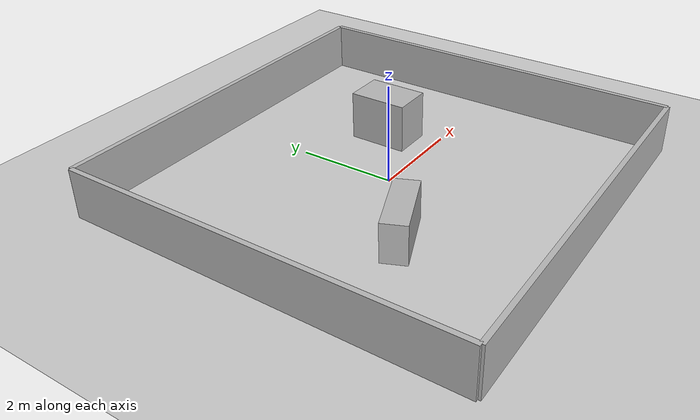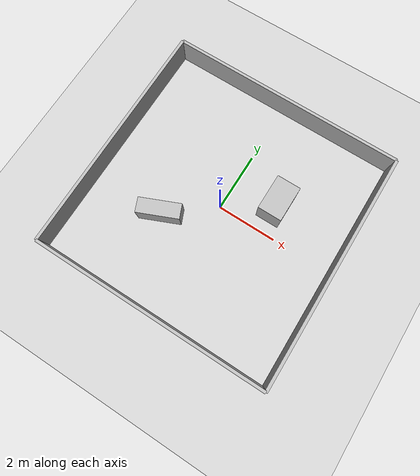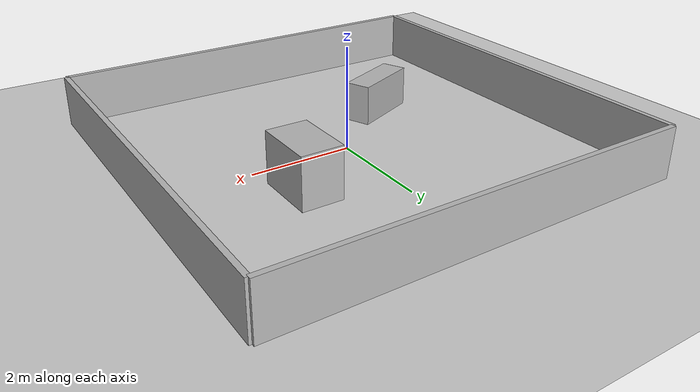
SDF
<?xml version="1.0"?>
<sdf version="1.6">
  <world name="training">
    <include><uri>model://ground_plane</uri></include><include><uri>model://sun</uri></include>
    <model name="walls"><static>true</static><link name="walls_link">
      <collision name="north_c"><pose>0 4 0.5 0 0 0</pose><geometry><box><size>8 0.1 1</size></box></geometry></collision><visual name="north_v"><pose>0 4 0.5 0 0 0</pose><geometry><box><size>8 0.1 1</size></box></geometry></visual>
      <collision name="south_c"><pose>0 -4 0.5 0 0 0</pose><geometry><box><size>8 0.1 1</size></box></geometry></collision><visual name="south_v"><pose>0 -4 0.5 0 0 0</pose><geometry><box><size>8 0.1 1</size></box></geometry></visual>
      <collision name="east_c"><pose>4 0 0.5 0 0 0</pose><geometry><box><size>0.1 8 1</size></box></geometry></collision><visual name="east_v"><pose>4 0 0.5 0 0 0</pose><geometry><box><size>0.1 8 1</size></box></geometry></visual>
      <collision name="west_c"><pose>-4 0 0.5 0 0 0</pose><geometry><box><size>0.1 8 1</size></box></geometry></collision><visual name="west_v"><pose>-4 0 0.5 0 0 0</pose><geometry><box><size>0.1 8 1</size></box></geometry></visual>
    </link></model>
    <model name="obstacle_a"><static>true</static><pose>1.5 1 0.5 0 0 0</pose><link name="link"><collision name="collision"><geometry><box><size>0.8 1.2 1</size></box></geometry></collision><visual name="visual"><geometry><box><size>0.8 1.2 1</size></box></geometry></visual></link></model>
    <model name="obstacle_b"><static>true</static><pose>-1.5 -1.2 0.4 0 0 0.4</pose><link name="link"><collision name="collision"><geometry><box><size>1.4 0.5 0.8</size></box></geometry></collision><visual name="visual"><geometry><box><size>1.4 0.5 0.8</size></box></geometry></visual></link></model>
    <physics type="ode"><real_time_update_rate>1000</real_time_update_rate><max_step_size>0.001</max_step_size></physics>
  </world>
</sdf>
